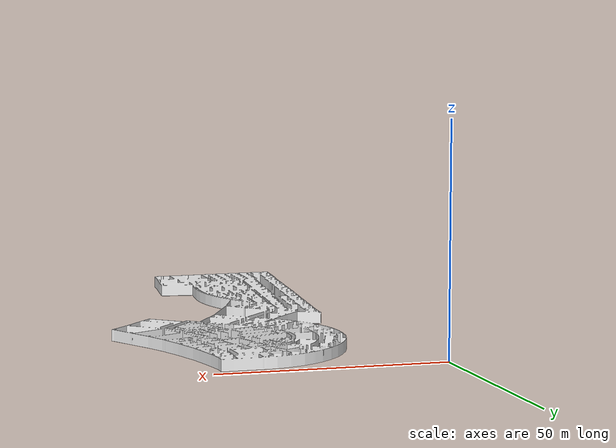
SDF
<?xml version='1.0' encoding='utf-8'?>
<sdf version="1.7">
  <model name="I2R_LVL9_LVL9">
    <static>true</static>
    <link name="floor_1">
      <visual name="visual">
        <geometry>
          <mesh>
            <uri>model://I2R_LVL9_LVL9/meshes/floor_1.obj</uri>
          </mesh>
        </geometry>
        <material>
          <diffuse>1.0 1.0 1.0</diffuse>
          <specular>0.1 0.1 0.1</specular>
          <pbr>
            <metal>
              <metalness>0.0</metalness>
              <albedo_map>model://I2R_LVL9_LVL9/meshes/blue_linoleum.png</albedo_map>
            </metal>
          </pbr>
          <script>
            <uri>model://I2R_LVL9_LVL9/meshes/</uri>
            <name>floor_1_Diffuse</name>
          </script>
        </material>
      </visual>
      <collision name="collision">
        <geometry>
          <mesh>
            <uri>model://I2R_LVL9_LVL9/meshes/floor_1.obj</uri>
          </mesh>
        </geometry>
        <surface>
          <contact>
            <collide_bitmask>0x01</collide_bitmask>
          </contact>
        </surface>
      </collision>
    </link>
    <link name="wall_1">
      <visual name="wall_1">
        <geometry>
          <mesh>
            <uri>model://I2R_LVL9_LVL9/meshes/wall_1.obj</uri>
          </mesh>
        </geometry>
        <material>
          <diffuse>1.0 1.0 1.0</diffuse>
          <specular>0.1 0.1 0.1</specular>
          <pbr>
            <metal>
              <metalness>0.0</metalness>
              <albedo_map>model://I2R_LVL9_LVL9/meshes/default.png</albedo_map>
            </metal>
          </pbr>
          <script>
            <uri>model://I2R_LVL9_LVL9/meshes/</uri>
            <name>wall_1_Diffuse</name>
          </script>
        </material>
      </visual>
      <collision name="collision">
        <geometry>
          <mesh>
            <uri>model://I2R_LVL9_LVL9/meshes/wall_1.obj</uri>
          </mesh>
        </geometry>
        <surface>
          <contact>
            <collide_bitmask>0x01</collide_bitmask>
          </contact>
        </surface>
      </collision>
      <pose>4.672885194576192 -117.06820370283158 0 0 0 0</pose>
    </link>
  </model>
</sdf>
